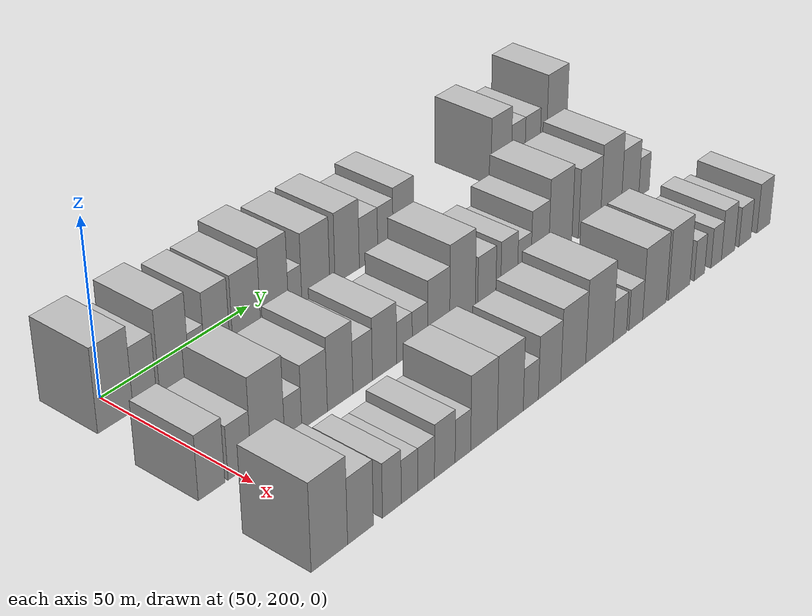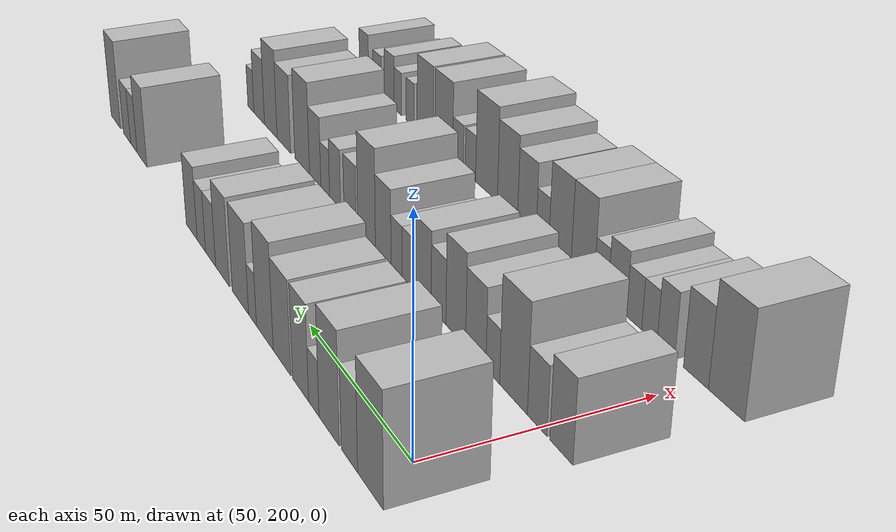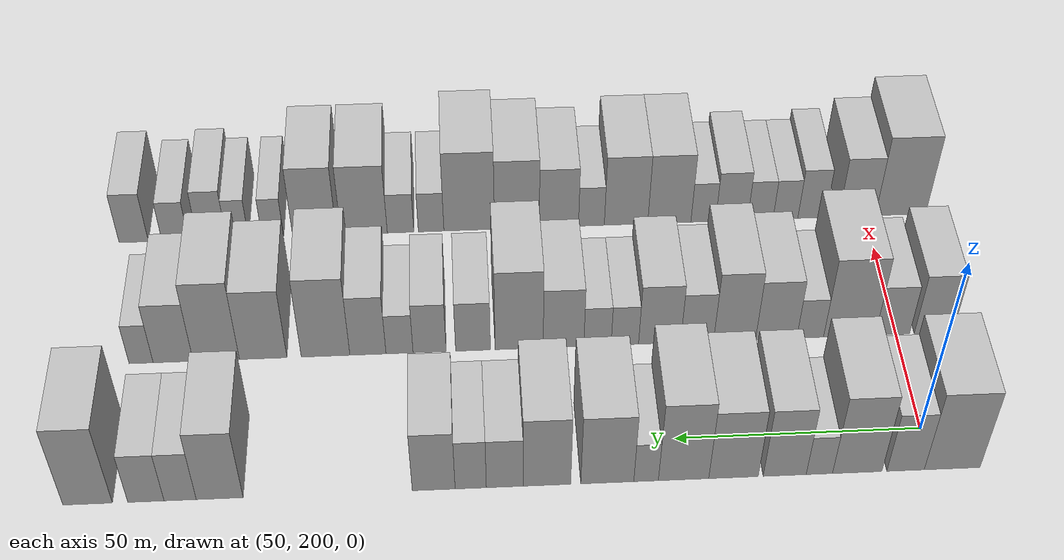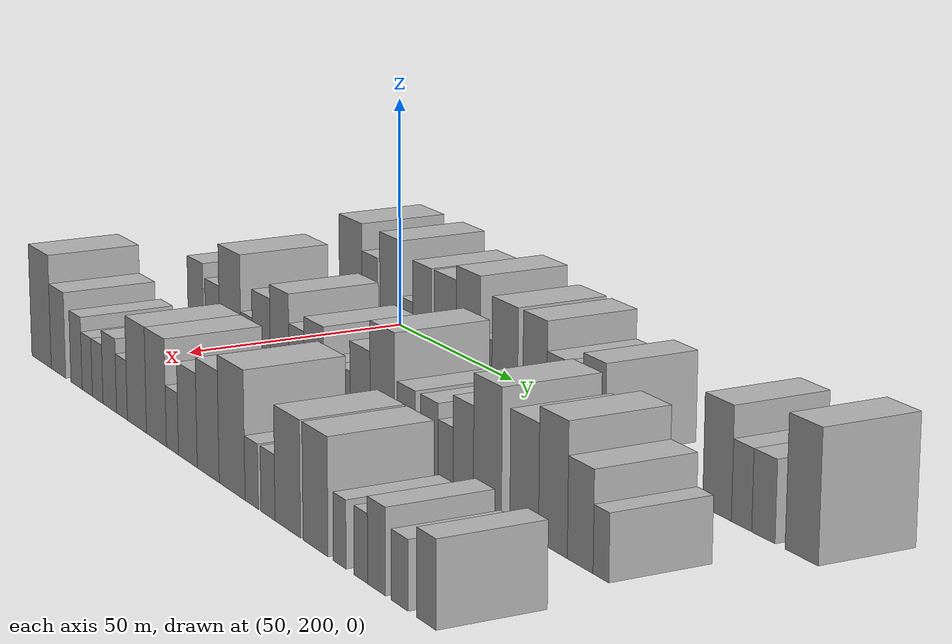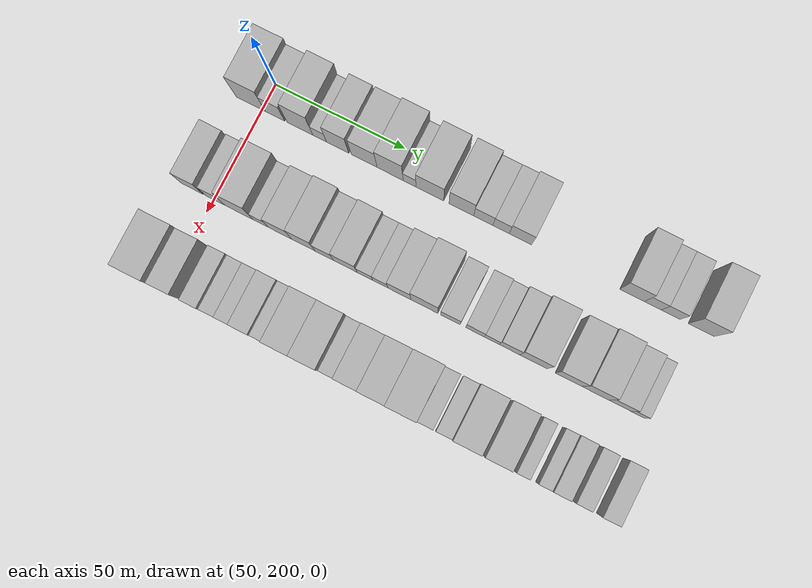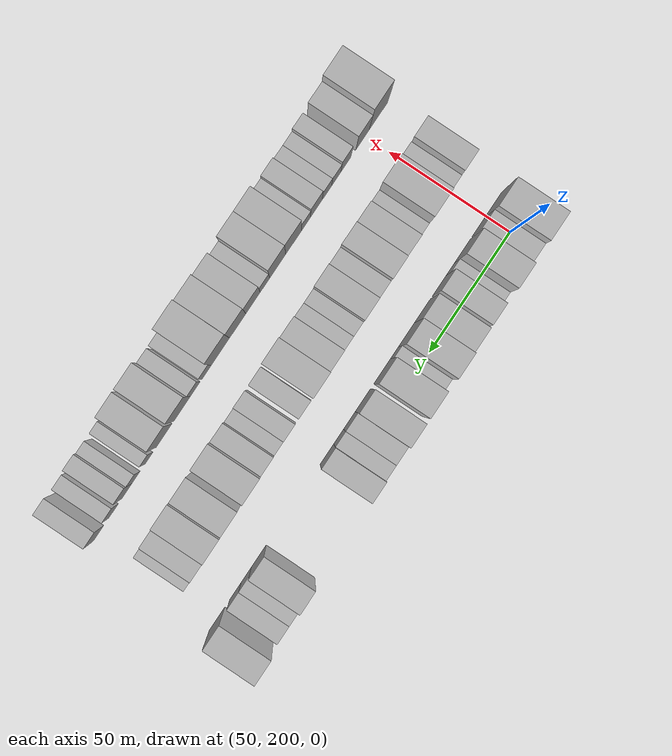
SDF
<sdf version="1.6">
 <world name="default">
  <model name="building_60">
   <static>1</static>
   <pose>50.0000 195.7242 0 0.000000 0.000000 0.000000</pose>
   <link name="link">
    <pose>0 0 12.00 0 0 0</pose>
    <collision name="collision"><geometry><box><size>20.0000 11.2023 24.0000</size></box></geometry></collision>
    <visual name="visual">
     <cast_shadows>0</cast_shadows>
     <geometry><box><size>20.0000 11.2023 24.0000</size></box></geometry>
     <material>
      <script>
       <uri>model://HANNAS_wall/materials/scripts</uri>
       <uri>model://HANNAS_wall/materials/textures</uri>
       <name>vrc/HANNAS_wall</name>
      </script>
     </material>
    </visual>
   </link>
  </model>
  <model name="building_61">
   <static>1</static>
   <pose>50.0000 205.0760 0 0.000000 0.000000 0.000000</pose>
   <link name="link">
    <pose>0 0 9.00 0 0 0</pose>
    <collision name="collision"><geometry><box><size>20.0000 7.5013 18.0000</size></box></geometry></collision>
    <visual name="visual">
     <cast_shadows>0</cast_shadows>
     <geometry><box><size>20.0000 7.5013 18.0000</size></box></geometry>
     <material>
      <script>
       <uri>model://HANNAS_wall/materials/scripts</uri>
       <uri>model://HANNAS_wall/materials/textures</uri>
       <name>vrc/HANNAS_wall</name>
      </script>
     </material>
    </visual>
   </link>
  </model>
  <model name="building_62">
   <static>1</static>
   <pose>50.0000 214.7667 0 0.000000 0.000000 0.000000</pose>
   <link name="link">
    <pose>0 0 12.00 0 0 0</pose>
    <collision name="collision"><geometry><box><size>20.0000 9.8800 24.0000</size></box></geometry></collision>
    <visual name="visual">
     <cast_shadows>0</cast_shadows>
     <geometry><box><size>20.0000 9.8800 24.0000</size></box></geometry>
     <material>
      <script>
       <uri>model://HANNAS_wall/materials/scripts</uri>
       <uri>model://HANNAS_wall/materials/textures</uri>
       <name>vrc/HANNAS_wall</name>
      </script>
     </material>
    </visual>
   </link>
  </model>
  <model name="building_63">
   <static>1</static>
   <pose>50.0000 222.3314 0 0.000000 0.000000 0.000000</pose>
   <link name="link">
    <pose>0 0 6.00 0 0 0</pose>
    <collision name="collision"><geometry><box><size>20.0000 5.2495 12.0000</size></box></geometry></collision>
    <visual name="visual">
     <cast_shadows>0</cast_shadows>
     <geometry><box><size>20.0000 5.2495 12.0000</size></box></geometry>
     <material>
      <script>
       <uri>model://HANNAS_wall/materials/scripts</uri>
       <uri>model://HANNAS_wall/materials/textures</uri>
       <name>vrc/HANNAS_wall</name>
      </script>
     </material>
    </visual>
   </link>
  </model>
  <model name="building_64">
   <static>1</static>
   <pose>50.0000 229.2454 0 0.000000 0.000000 0.000000</pose>
   <link name="link">
    <pose>0 0 10.50 0 0 0</pose>
    <collision name="collision"><geometry><box><size>20.0000 8.5784 21.0000</size></box></geometry></collision>
    <visual name="visual">
     <cast_shadows>0</cast_shadows>
     <geometry><box><size>20.0000 8.5784 21.0000</size></box></geometry>
     <material>
      <script>
       <uri>model://HANNAS_wall/materials/scripts</uri>
       <uri>model://HANNAS_wall/materials/textures</uri>
       <name>vrc/HANNAS_wall</name>
      </script>
     </material>
    </visual>
   </link>
  </model>
  <model name="building_65">
   <static>1</static>
   <pose>50.0000 239.4537 0 0.000000 0.000000 0.000000</pose>
   <link name="link">
    <pose>0 0 10.50 0 0 0</pose>
    <collision name="collision"><geometry><box><size>20.0000 9.8383 21.0000</size></box></geometry></collision>
    <visual name="visual">
     <cast_shadows>0</cast_shadows>
     <geometry><box><size>20.0000 9.8383 21.0000</size></box></geometry>
     <material>
      <script>
       <uri>model://HANNAS_wall/materials/scripts</uri>
       <uri>model://HANNAS_wall/materials/textures</uri>
       <name>vrc/HANNAS_wall</name>
      </script>
     </material>
    </visual>
   </link>
  </model>
  <model name="building_66">
   <static>1</static>
   <pose>50.0000 249.3838 0 0.000000 0.000000 0.000000</pose>
   <link name="link">
    <pose>0 0 12.00 0 0 0</pose>
    <collision name="collision"><geometry><box><size>20.0000 10.0220 24.0000</size></box></geometry></collision>
    <visual name="visual">
     <cast_shadows>0</cast_shadows>
     <geometry><box><size>20.0000 10.0220 24.0000</size></box></geometry>
     <material>
      <script>
       <uri>model://HANNAS_wall/materials/scripts</uri>
       <uri>model://HANNAS_wall/materials/textures</uri>
       <name>vrc/HANNAS_wall</name>
      </script>
     </material>
    </visual>
   </link>
  </model>
  <model name="building_67">
   <static>1</static>
   <pose>50.0000 256.8304 0 0.000000 0.000000 0.000000</pose>
   <link name="link">
    <pose>0 0 6.00 0 0 0</pose>
    <collision name="collision"><geometry><box><size>20.0000 4.8712 12.0000</size></box></geometry></collision>
    <visual name="visual">
     <cast_shadows>0</cast_shadows>
     <geometry><box><size>20.0000 4.8712 12.0000</size></box></geometry>
     <material>
      <script>
       <uri>model://HANNAS_wall/materials/scripts</uri>
       <uri>model://HANNAS_wall/materials/textures</uri>
       <name>vrc/HANNAS_wall</name>
      </script>
     </material>
    </visual>
   </link>
  </model>
  <model name="building_68">
   <static>1</static>
   <pose>50.0000 264.5145 0 0.000000 0.000000 0.000000</pose>
   <link name="link">
    <pose>0 0 10.50 0 0 0</pose>
    <collision name="collision"><geometry><box><size>20.0000 10.4969 21.0000</size></box></geometry></collision>
    <visual name="visual">
     <cast_shadows>0</cast_shadows>
     <geometry><box><size>20.0000 10.4969 21.0000</size></box></geometry>
     <material>
      <script>
       <uri>model://HANNAS_wall/materials/scripts</uri>
       <uri>model://HANNAS_wall/materials/textures</uri>
       <name>vrc/HANNAS_wall</name>
      </script>
     </material>
    </visual>
   </link>
  </model>
  <model name="building_69">
   <static>1</static>
   <pose>50.0000 276.4548 0 0.000000 0.000000 0.000000</pose>
   <link name="link">
    <pose>0 0 10.50 0 0 0</pose>
    <collision name="collision"><geometry><box><size>20.0000 9.3837 21.0000</size></box></geometry></collision>
    <visual name="visual">
     <cast_shadows>0</cast_shadows>
     <geometry><box><size>20.0000 9.3837 21.0000</size></box></geometry>
     <material>
      <script>
       <uri>model://HANNAS_wall/materials/scripts</uri>
       <uri>model://HANNAS_wall/materials/textures</uri>
       <name>vrc/HANNAS_wall</name>
      </script>
     </material>
    </visual>
   </link>
  </model>
  <model name="building_70">
   <static>1</static>
   <pose>50.0000 284.7832 0 0.000000 0.000000 0.000000</pose>
   <link name="link">
    <pose>0 0 7.50 0 0 0</pose>
    <collision name="collision"><geometry><box><size>20.0000 7.2729 15.0000</size></box></geometry></collision>
    <visual name="visual">
     <cast_shadows>0</cast_shadows>
     <geometry><box><size>20.0000 7.2729 15.0000</size></box></geometry>
     <material>
      <script>
       <uri>model://HANNAS_wall/materials/scripts</uri>
       <uri>model://HANNAS_wall/materials/textures</uri>
       <name>vrc/HANNAS_wall</name>
      </script>
     </material>
    </visual>
   </link>
  </model>
  <model name="building_71">
   <static>1</static>
   <pose>50.0000 291.4937 0 0.000000 0.000000 0.000000</pose>
   <link name="link">
    <pose>0 0 7.50 0 0 0</pose>
    <collision name="collision"><geometry><box><size>20.0000 6.1482 15.0000</size></box></geometry></collision>
    <visual name="visual">
     <cast_shadows>0</cast_shadows>
     <geometry><box><size>20.0000 6.1482 15.0000</size></box></geometry>
     <material>
      <script>
       <uri>model://HANNAS_wall/materials/scripts</uri>
       <uri>model://HANNAS_wall/materials/textures</uri>
       <name>vrc/HANNAS_wall</name>
      </script>
     </material>
    </visual>
   </link>
  </model>
  <model name="building_72">
   <static>1</static>
   <pose>50.0000 298.7788 0 0.000000 0.000000 0.000000</pose>
   <link name="link">
    <pose>0 0 9.00 0 0 0</pose>
    <collision name="collision"><geometry><box><size>20.0000 8.4220 18.0000</size></box></geometry></collision>
    <visual name="visual">
     <cast_shadows>0</cast_shadows>
     <geometry><box><size>20.0000 8.4220 18.0000</size></box></geometry>
     <material>
      <script>
       <uri>model://HANNAS_wall/materials/scripts</uri>
       <uri>model://HANNAS_wall/materials/textures</uri>
       <name>vrc/HANNAS_wall</name>
      </script>
     </material>
    </visual>
   </link>
  </model>
  <model name="building_73">
   <static>1</static>
   <pose>50.0000 340.7081 0 0.000000 0.000000 0.000000</pose>
   <link name="link">
    <pose>0 0 10.50 0 0 0</pose>
    <collision name="collision"><geometry><box><size>20.0000 9.1456 21.0000</size></box></geometry></collision>
    <visual name="visual">
     <cast_shadows>0</cast_shadows>
     <geometry><box><size>20.0000 9.1456 21.0000</size></box></geometry>
     <material>
      <script>
       <uri>model://HANNAS_wall/materials/scripts</uri>
       <uri>model://HANNAS_wall/materials/textures</uri>
       <name>vrc/HANNAS_wall</name>
      </script>
     </material>
    </visual>
   </link>
  </model>
  <model name="building_74">
   <static>1</static>
   <pose>50.0000 348.4140 0 0.000000 0.000000 0.000000</pose>
   <link name="link">
    <pose>0 0 7.50 0 0 0</pose>
    <collision name="collision"><geometry><box><size>20.0000 6.2661 15.0000</size></box></geometry></collision>
    <visual name="visual">
     <cast_shadows>0</cast_shadows>
     <geometry><box><size>20.0000 6.2661 15.0000</size></box></geometry>
     <material>
      <script>
       <uri>model://HANNAS_wall/materials/scripts</uri>
       <uri>model://HANNAS_wall/materials/textures</uri>
       <name>vrc/HANNAS_wall</name>
      </script>
     </material>
    </visual>
   </link>
  </model>
  <model name="building_75">
   <static>1</static>
   <pose>50.0000 355.0725 0 0.000000 0.000000 0.000000</pose>
   <link name="link">
    <pose>0 0 7.50 0 0 0</pose>
    <collision name="collision"><geometry><box><size>20.0000 7.0509 15.0000</size></box></geometry></collision>
    <visual name="visual">
     <cast_shadows>0</cast_shadows>
     <geometry><box><size>20.0000 7.0509 15.0000</size></box></geometry>
     <material>
      <script>
       <uri>model://HANNAS_wall/materials/scripts</uri>
       <uri>model://HANNAS_wall/materials/textures</uri>
       <name>vrc/HANNAS_wall</name>
      </script>
     </material>
    </visual>
   </link>
  </model>
  <model name="building_76">
   <static>1</static>
   <pose>50.0000 366.4032 0 0.000000 0.000000 0.000000</pose>
   <link name="link">
    <pose>0 0 12.00 0 0 0</pose>
    <collision name="collision"><geometry><box><size>20.0000 9.6106 24.0000</size></box></geometry></collision>
    <visual name="visual">
     <cast_shadows>0</cast_shadows>
     <geometry><box><size>20.0000 9.6106 24.0000</size></box></geometry>
     <material>
      <script>
       <uri>model://HANNAS_wall/materials/scripts</uri>
       <uri>model://HANNAS_wall/materials/textures</uri>
       <name>vrc/HANNAS_wall</name>
      </script>
     </material>
    </visual>
   </link>
  </model>
  <model name="building_138">
   <static>1</static>
   <pose>85.0000 191.9416 0 0.000000 0.000000 0.000000</pose>
   <link name="link">
    <pose>0 0 9.00 0 0 0</pose>
    <collision name="collision"><geometry><box><size>20.0000 8.3082 18.0000</size></box></geometry></collision>
    <visual name="visual">
     <cast_shadows>0</cast_shadows>
     <geometry><box><size>20.0000 8.3082 18.0000</size></box></geometry>
     <material>
      <script>
       <uri>model://HANNAS_wall/materials/scripts</uri>
       <uri>model://HANNAS_wall/materials/textures</uri>
       <name>vrc/HANNAS_wall</name>
      </script>
     </material>
    </visual>
   </link>
  </model>
  <model name="building_139">
   <static>1</static>
   <pose>85.0000 200.7867 0 0.000000 0.000000 0.000000</pose>
   <link name="link">
    <pose>0 0 7.50 0 0 0</pose>
    <collision name="collision"><geometry><box><size>20.0000 7.3820 15.0000</size></box></geometry></collision>
    <visual name="visual">
     <cast_shadows>0</cast_shadows>
     <geometry><box><size>20.0000 7.3820 15.0000</size></box></geometry>
     <material>
      <script>
       <uri>model://HANNAS_wall/materials/scripts</uri>
       <uri>model://HANNAS_wall/materials/textures</uri>
       <name>vrc/HANNAS_wall</name>
      </script>
     </material>
    </visual>
   </link>
  </model>
  <model name="building_140">
   <static>1</static>
   <pose>85.0000 210.0080 0 0.000000 0.000000 0.000000</pose>
   <link name="link">
    <pose>0 0 12.00 0 0 0</pose>
    <collision name="collision"><geometry><box><size>20.0000 11.0606 24.0000</size></box></geometry></collision>
    <visual name="visual">
     <cast_shadows>0</cast_shadows>
     <geometry><box><size>20.0000 11.0606 24.0000</size></box></geometry>
     <material>
      <script>
       <uri>model://HANNAS_wall/materials/scripts</uri>
       <uri>model://HANNAS_wall/materials/textures</uri>
       <name>vrc/HANNAS_wall</name>
      </script>
     </material>
    </visual>
   </link>
  </model>
  <model name="building_141">
   <static>1</static>
   <pose>85.0000 218.4133 0 0.000000 0.000000 0.000000</pose>
   <link name="link">
    <pose>0 0 6.00 0 0 0</pose>
    <collision name="collision"><geometry><box><size>20.0000 5.7501 12.0000</size></box></geometry></collision>
    <visual name="visual">
     <cast_shadows>0</cast_shadows>
     <geometry><box><size>20.0000 5.7501 12.0000</size></box></geometry>
     <material>
      <script>
       <uri>model://HANNAS_wall/materials/scripts</uri>
       <uri>model://HANNAS_wall/materials/textures</uri>
       <name>vrc/HANNAS_wall</name>
      </script>
     </material>
    </visual>
   </link>
  </model>
  <model name="building_142">
   <static>1</static>
   <pose>85.0000 225.6847 0 0.000000 0.000000 0.000000</pose>
   <link name="link">
    <pose>0 0 9.00 0 0 0</pose>
    <collision name="collision"><geometry><box><size>20.0000 8.7927 18.0000</size></box></geometry></collision>
    <visual name="visual">
     <cast_shadows>0</cast_shadows>
     <geometry><box><size>20.0000 8.7927 18.0000</size></box></geometry>
     <material>
      <script>
       <uri>model://HANNAS_wall/materials/scripts</uri>
       <uri>model://HANNAS_wall/materials/textures</uri>
       <name>vrc/HANNAS_wall</name>
      </script>
     </material>
    </visual>
   </link>
  </model>
  <model name="building_143">
   <static>1</static>
   <pose>85.0000 234.5611 0 0.000000 0.000000 0.000000</pose>
   <link name="link">
    <pose>0 0 10.50 0 0 0</pose>
    <collision name="collision"><geometry><box><size>20.0000 8.9601 21.0000</size></box></geometry></collision>
    <visual name="visual">
     <cast_shadows>0</cast_shadows>
     <geometry><box><size>20.0000 8.9601 21.0000</size></box></geometry>
     <material>
      <script>
       <uri>model://HANNAS_wall/materials/scripts</uri>
       <uri>model://HANNAS_wall/materials/textures</uri>
       <name>vrc/HANNAS_wall</name>
      </script>
     </material>
    </visual>
   </link>
  </model>
  <model name="building_144">
   <static>1</static>
   <pose>85.0000 242.5487 0 0.000000 0.000000 0.000000</pose>
   <link name="link">
    <pose>0 0 7.50 0 0 0</pose>
    <collision name="collision"><geometry><box><size>20.0000 7.0150 15.0000</size></box></geometry></collision>
    <visual name="visual">
     <cast_shadows>0</cast_shadows>
     <geometry><box><size>20.0000 7.0150 15.0000</size></box></geometry>
     <material>
      <script>
       <uri>model://HANNAS_wall/materials/scripts</uri>
       <uri>model://HANNAS_wall/materials/textures</uri>
       <name>vrc/HANNAS_wall</name>
      </script>
     </material>
    </visual>
   </link>
  </model>
  <model name="building_145">
   <static>1</static>
   <pose>85.0000 250.5208 0 0.000000 0.000000 0.000000</pose>
   <link name="link">
    <pose>0 0 9.00 0 0 0</pose>
    <collision name="collision"><geometry><box><size>20.0000 8.9292 18.0000</size></box></geometry></collision>
    <visual name="visual">
     <cast_shadows>0</cast_shadows>
     <geometry><box><size>20.0000 8.9292 18.0000</size></box></geometry>
     <material>
      <script>
       <uri>model://HANNAS_wall/materials/scripts</uri>
       <uri>model://HANNAS_wall/materials/textures</uri>
       <name>vrc/HANNAS_wall</name>
      </script>
     </material>
    </visual>
   </link>
  </model>
  <model name="building_146">
   <static>1</static>
   <pose>85.0000 257.8987 0 0.000000 0.000000 0.000000</pose>
   <link name="link">
    <pose>0 0 6.00 0 0 0</pose>
    <collision name="collision"><geometry><box><size>20.0000 5.8268 12.0000</size></box></geometry></collision>
    <visual name="visual">
     <cast_shadows>0</cast_shadows>
     <geometry><box><size>20.0000 5.8268 12.0000</size></box></geometry>
     <material>
      <script>
       <uri>model://HANNAS_wall/materials/scripts</uri>
       <uri>model://HANNAS_wall/materials/textures</uri>
       <name>vrc/HANNAS_wall</name>
      </script>
     </material>
    </visual>
   </link>
  </model>
  <model name="building_147">
   <static>1</static>
   <pose>85.0000 263.7088 0 0.000000 0.000000 0.000000</pose>
   <link name="link">
    <pose>0 0 6.00 0 0 0</pose>
    <collision name="collision"><geometry><box><size>20.0000 5.7935 12.0000</size></box></geometry></collision>
    <visual name="visual">
     <cast_shadows>0</cast_shadows>
     <geometry><box><size>20.0000 5.7935 12.0000</size></box></geometry>
     <material>
      <script>
       <uri>model://HANNAS_wall/materials/scripts</uri>
       <uri>model://HANNAS_wall/materials/textures</uri>
       <name>vrc/HANNAS_wall</name>
      </script>
     </material>
    </visual>
   </link>
  </model>
  <model name="building_148">
   <static>1</static>
   <pose>85.0000 270.9054 0 0.000000 0.000000 0.000000</pose>
   <link name="link">
    <pose>0 0 9.00 0 0 0</pose>
    <collision name="collision"><geometry><box><size>20.0000 8.5997 18.0000</size></box></geometry></collision>
    <visual name="visual">
     <cast_shadows>0</cast_shadows>
     <geometry><box><size>20.0000 8.5997 18.0000</size></box></geometry>
     <material>
      <script>
       <uri>model://HANNAS_wall/materials/scripts</uri>
       <uri>model://HANNAS_wall/materials/textures</uri>
       <name>vrc/HANNAS_wall</name>
      </script>
     </material>
    </visual>
   </link>
  </model>
  <model name="building_149">
   <static>1</static>
   <pose>85.0000 280.2719 0 0.000000 0.000000 0.000000</pose>
   <link name="link">
    <pose>0 0 12.00 0 0 0</pose>
    <collision name="collision"><geometry><box><size>20.0000 10.1333 24.0000</size></box></geometry></collision>
    <visual name="visual">
     <cast_shadows>0</cast_shadows>
     <geometry><box><size>20.0000 10.1333 24.0000</size></box></geometry>
     <material>
      <script>
       <uri>model://HANNAS_wall/materials/scripts</uri>
       <uri>model://HANNAS_wall/materials/textures</uri>
       <name>vrc/HANNAS_wall</name>
      </script>
     </material>
    </visual>
   </link>
  </model>
  <model name="building_150">
   <static>1</static>
   <pose>85.0000 290.0118 0 0.000000 0.000000 0.000000</pose>
   <link name="link">
    <pose>0 0 7.50 0 0 0</pose>
    <collision name="collision"><geometry><box><size>20.0000 7.3466 15.0000</size></box></geometry></collision>
    <visual name="visual">
     <cast_shadows>0</cast_shadows>
     <geometry><box><size>20.0000 7.3466 15.0000</size></box></geometry>
     <material>
      <script>
       <uri>model://HANNAS_wall/materials/scripts</uri>
       <uri>model://HANNAS_wall/materials/textures</uri>
       <name>vrc/HANNAS_wall</name>
      </script>
     </material>
    </visual>
   </link>
  </model>
  <model name="building_151">
   <static>1</static>
   <pose>85.0000 299.1734 0 0.000000 0.000000 0.000000</pose>
   <link name="link">
    <pose>0 0 7.50 0 0 0</pose>
    <collision name="collision"><geometry><box><size>20.0000 6.9765 15.0000</size></box></geometry></collision>
    <visual name="visual">
     <cast_shadows>0</cast_shadows>
     <geometry><box><size>20.0000 6.9765 15.0000</size></box></geometry>
     <material>
      <script>
       <uri>model://HANNAS_wall/materials/scripts</uri>
       <uri>model://HANNAS_wall/materials/textures</uri>
       <name>vrc/HANNAS_wall</name>
      </script>
     </material>
    </visual>
   </link>
  </model>
  <model name="building_152">
   <static>1</static>
   <pose>85.0000 305.5049 0 0.000000 0.000000 0.000000</pose>
   <link name="link">
    <pose>0 0 6.00 0 0 0</pose>
    <collision name="collision"><geometry><box><size>20.0000 5.6864 12.0000</size></box></geometry></collision>
    <visual name="visual">
     <cast_shadows>0</cast_shadows>
     <geometry><box><size>20.0000 5.6864 12.0000</size></box></geometry>
     <material>
      <script>
       <uri>model://HANNAS_wall/materials/scripts</uri>
       <uri>model://HANNAS_wall/materials/textures</uri>
       <name>vrc/HANNAS_wall</name>
      </script>
     </material>
    </visual>
   </link>
  </model>
  <model name="building_153">
   <static>1</static>
   <pose>85.0000 312.1440 0 0.000000 0.000000 0.000000</pose>
   <link name="link">
    <pose>0 0 9.00 0 0 0</pose>
    <collision name="collision"><geometry><box><size>20.0000 7.5918 18.0000</size></box></geometry></collision>
    <visual name="visual">
     <cast_shadows>0</cast_shadows>
     <geometry><box><size>20.0000 7.5918 18.0000</size></box></geometry>
     <material>
      <script>
       <uri>model://HANNAS_wall/materials/scripts</uri>
       <uri>model://HANNAS_wall/materials/textures</uri>
       <name>vrc/HANNAS_wall</name>
      </script>
     </material>
    </visual>
   </link>
  </model>
  <model name="building_154">
   <static>1</static>
   <pose>85.0000 321.0387 0 0.000000 0.000000 0.000000</pose>
   <link name="link">
    <pose>0 0 12.00 0 0 0</pose>
    <collision name="collision"><geometry><box><size>20.0000 10.1975 24.0000</size></box></geometry></collision>
    <visual name="visual">
     <cast_shadows>0</cast_shadows>
     <geometry><box><size>20.0000 10.1975 24.0000</size></box></geometry>
     <material>
      <script>
       <uri>model://HANNAS_wall/materials/scripts</uri>
       <uri>model://HANNAS_wall/materials/textures</uri>
       <name>vrc/HANNAS_wall</name>
      </script>
     </material>
    </visual>
   </link>
  </model>
  <model name="building_155">
   <static>1</static>
   <pose>85.0000 334.1100 0 0.000000 0.000000 0.000000</pose>
   <link name="link">
    <pose>0 0 10.50 0 0 0</pose>
    <collision name="collision"><geometry><box><size>20.0000 9.9452 21.0000</size></box></geometry></collision>
    <visual name="visual">
     <cast_shadows>0</cast_shadows>
     <geometry><box><size>20.0000 9.9452 21.0000</size></box></geometry>
     <material>
      <script>
       <uri>model://HANNAS_wall/materials/scripts</uri>
       <uri>model://HANNAS_wall/materials/textures</uri>
       <name>vrc/HANNAS_wall</name>
      </script>
     </material>
    </visual>
   </link>
  </model>
  <model name="building_156">
   <static>1</static>
   <pose>85.0000 343.9161 0 0.000000 0.000000 0.000000</pose>
   <link name="link">
    <pose>0 0 12.00 0 0 0</pose>
    <collision name="collision"><geometry><box><size>20.0000 9.6670 24.0000</size></box></geometry></collision>
    <visual name="visual">
     <cast_shadows>0</cast_shadows>
     <geometry><box><size>20.0000 9.6670 24.0000</size></box></geometry>
     <material>
      <script>
       <uri>model://HANNAS_wall/materials/scripts</uri>
       <uri>model://HANNAS_wall/materials/textures</uri>
       <name>vrc/HANNAS_wall</name>
      </script>
     </material>
    </visual>
   </link>
  </model>
  <model name="building_157">
   <static>1</static>
   <pose>85.0000 352.9273 0 0.000000 0.000000 0.000000</pose>
   <link name="link">
    <pose>0 0 9.00 0 0 0</pose>
    <collision name="collision"><geometry><box><size>20.0000 8.3553 18.0000</size></box></geometry></collision>
    <visual name="visual">
     <cast_shadows>0</cast_shadows>
     <geometry><box><size>20.0000 8.3553 18.0000</size></box></geometry>
     <material>
      <script>
       <uri>model://HANNAS_wall/materials/scripts</uri>
       <uri>model://HANNAS_wall/materials/textures</uri>
       <name>vrc/HANNAS_wall</name>
      </script>
     </material>
    </visual>
   </link>
  </model>
  <model name="building_158">
   <static>1</static>
   <pose>85.0000 359.6115 0 0.000000 0.000000 0.000000</pose>
   <link name="link">
    <pose>0 0 6.00 0 0 0</pose>
    <collision name="collision"><geometry><box><size>20.0000 5.0130 12.0000</size></box></geometry></collision>
    <visual name="visual">
     <cast_shadows>0</cast_shadows>
     <geometry><box><size>20.0000 5.0130 12.0000</size></box></geometry>
     <material>
      <script>
       <uri>model://HANNAS_wall/materials/scripts</uri>
       <uri>model://HANNAS_wall/materials/textures</uri>
       <name>vrc/HANNAS_wall</name>
      </script>
     </material>
    </visual>
   </link>
  </model>
  <model name="building_220">
   <static>1</static>
   <pose>120.0000 191.9872 0 0.000000 0.000000 0.000000</pose>
   <link name="link">
    <pose>0 0 12.00 0 0 0</pose>
    <collision name="collision"><geometry><box><size>20.0000 11.5384 24.0000</size></box></geometry></collision>
    <visual name="visual">
     <cast_shadows>0</cast_shadows>
     <geometry><box><size>20.0000 11.5384 24.0000</size></box></geometry>
     <material>
      <script>
       <uri>model://HANNAS_wall/materials/scripts</uri>
       <uri>model://HANNAS_wall/materials/textures</uri>
       <name>vrc/HANNAS_wall</name>
      </script>
     </material>
    </visual>
   </link>
  </model>
  <model name="building_221">
   <static>1</static>
   <pose>120.0000 201.9499 0 0.000000 0.000000 0.000000</pose>
   <link name="link">
    <pose>0 0 9.00 0 0 0</pose>
    <collision name="collision"><geometry><box><size>20.0000 8.3870 18.0000</size></box></geometry></collision>
    <visual name="visual">
     <cast_shadows>0</cast_shadows>
     <geometry><box><size>20.0000 8.3870 18.0000</size></box></geometry>
     <material>
      <script>
       <uri>model://HANNAS_wall/materials/scripts</uri>
       <uri>model://HANNAS_wall/materials/textures</uri>
       <name>vrc/HANNAS_wall</name>
      </script>
     </material>
    </visual>
   </link>
  </model>
  <model name="building_222">
   <static>1</static>
   <pose>120.0000 212.3005 0 0.000000 0.000000 0.000000</pose>
   <link name="link">
    <pose>0 0 7.50 0 0 0</pose>
    <collision name="collision"><geometry><box><size>20.0000 6.3141 15.0000</size></box></geometry></collision>
    <visual name="visual">
     <cast_shadows>0</cast_shadows>
     <geometry><box><size>20.0000 6.3141 15.0000</size></box></geometry>
     <material>
      <script>
       <uri>model://HANNAS_wall/materials/scripts</uri>
       <uri>model://HANNAS_wall/materials/textures</uri>
       <name>vrc/HANNAS_wall</name>
      </script>
     </material>
    </visual>
   </link>
  </model>
  <model name="building_223">
   <static>1</static>
   <pose>120.0000 218.2814 0 0.000000 0.000000 0.000000</pose>
   <link name="link">
    <pose>0 0 6.00 0 0 0</pose>
    <collision name="collision"><geometry><box><size>20.0000 5.6477 12.0000</size></box></geometry></collision>
    <visual name="visual">
     <cast_shadows>0</cast_shadows>
     <geometry><box><size>20.0000 5.6477 12.0000</size></box></geometry>
     <material>
      <script>
       <uri>model://HANNAS_wall/materials/scripts</uri>
       <uri>model://HANNAS_wall/materials/textures</uri>
       <name>vrc/HANNAS_wall</name>
      </script>
     </material>
    </visual>
   </link>
  </model>
  <model name="building_224">
   <static>1</static>
   <pose>120.0000 224.0048 0 0.000000 0.000000 0.000000</pose>
   <link name="link">
    <pose>0 0 6.00 0 0 0</pose>
    <collision name="collision"><geometry><box><size>20.0000 5.7991 12.0000</size></box></geometry></collision>
    <visual name="visual">
     <cast_shadows>0</cast_shadows>
     <geometry><box><size>20.0000 5.7991 12.0000</size></box></geometry>
     <material>
      <script>
       <uri>model://HANNAS_wall/materials/scripts</uri>
       <uri>model://HANNAS_wall/materials/textures</uri>
       <name>vrc/HANNAS_wall</name>
      </script>
     </material>
    </visual>
   </link>
  </model>
  <model name="building_225">
   <static>1</static>
   <pose>120.0000 230.5446 0 0.000000 0.000000 0.000000</pose>
   <link name="link">
    <pose>0 0 7.50 0 0 0</pose>
    <collision name="collision"><geometry><box><size>20.0000 7.2805 15.0000</size></box></geometry></collision>
    <visual name="visual">
     <cast_shadows>0</cast_shadows>
     <geometry><box><size>20.0000 7.2805 15.0000</size></box></geometry>
     <material>
      <script>
       <uri>model://HANNAS_wall/materials/scripts</uri>
       <uri>model://HANNAS_wall/materials/textures</uri>
       <name>vrc/HANNAS_wall</name>
      </script>
     </material>
    </visual>
   </link>
  </model>
  <model name="building_226">
   <static>1</static>
   <pose>120.0000 236.9828 0 0.000000 0.000000 0.000000</pose>
   <link name="link">
    <pose>0 0 6.00 0 0 0</pose>
    <collision name="collision"><geometry><box><size>20.0000 5.5960 12.0000</size></box></geometry></collision>
    <visual name="visual">
     <cast_shadows>0</cast_shadows>
     <geometry><box><size>20.0000 5.5960 12.0000</size></box></geometry>
     <material>
      <script>
       <uri>model://HANNAS_wall/materials/scripts</uri>
       <uri>model://HANNAS_wall/materials/textures</uri>
       <name>vrc/HANNAS_wall</name>
      </script>
     </material>
    </visual>
   </link>
  </model>
  <model name="building_227">
   <static>1</static>
   <pose>120.0000 244.6711 0 0.000000 0.000000 0.000000</pose>
   <link name="link">
    <pose>0 0 10.50 0 0 0</pose>
    <collision name="collision"><geometry><box><size>20.0000 9.7805 21.0000</size></box></geometry></collision>
    <visual name="visual">
     <cast_shadows>0</cast_shadows>
     <geometry><box><size>20.0000 9.7805 21.0000</size></box></geometry>
     <material>
      <script>
       <uri>model://HANNAS_wall/materials/scripts</uri>
       <uri>model://HANNAS_wall/materials/textures</uri>
       <name>vrc/HANNAS_wall</name>
      </script>
     </material>
    </visual>
   </link>
  </model>
  <model name="building_228">
   <static>1</static>
   <pose>120.0000 254.4765 0 0.000000 0.000000 0.000000</pose>
   <link name="link">
    <pose>0 0 10.50 0 0 0</pose>
    <collision name="collision"><geometry><box><size>20.0000 9.8302 21.0000</size></box></geometry></collision>
    <visual name="visual">
     <cast_shadows>0</cast_shadows>
     <geometry><box><size>20.0000 9.8302 21.0000</size></box></geometry>
     <material>
      <script>
       <uri>model://HANNAS_wall/materials/scripts</uri>
       <uri>model://HANNAS_wall/materials/textures</uri>
       <name>vrc/HANNAS_wall</name>
      </script>
     </material>
    </visual>
   </link>
  </model>
  <model name="building_229">
   <static>1</static>
   <pose>120.0000 262.3106 0 0.000000 0.000000 0.000000</pose>
   <link name="link">
    <pose>0 0 6.00 0 0 0</pose>
    <collision name="collision"><geometry><box><size>20.0000 5.8380 12.0000</size></box></geometry></collision>
    <visual name="visual">
     <cast_shadows>0</cast_shadows>
     <geometry><box><size>20.0000 5.8380 12.0000</size></box></geometry>
     <material>
      <script>
       <uri>model://HANNAS_wall/materials/scripts</uri>
       <uri>model://HANNAS_wall/materials/textures</uri>
       <name>vrc/HANNAS_wall</name>
      </script>
     </material>
    </visual>
   </link>
  </model>
  <model name="building_230">
   <static>1</static>
   <pose>120.0000 269.6522 0 0.000000 0.000000 0.000000</pose>
   <link name="link">
    <pose>0 0 9.00 0 0 0</pose>
    <collision name="collision"><geometry><box><size>20.0000 8.8453 18.0000</size></box></geometry></collision>
    <visual name="visual">
     <cast_shadows>0</cast_shadows>
     <geometry><box><size>20.0000 8.8453 18.0000</size></box></geometry>
     <material>
      <script>
       <uri>model://HANNAS_wall/materials/scripts</uri>
       <uri>model://HANNAS_wall/materials/textures</uri>
       <name>vrc/HANNAS_wall</name>
      </script>
     </material>
    </visual>
   </link>
  </model>
  <model name="building_231">
   <static>1</static>
   <pose>120.0000 279.1159 0 0.000000 0.000000 0.000000</pose>
   <link name="link">
    <pose>0 0 10.50 0 0 0</pose>
    <collision name="collision"><geometry><box><size>20.0000 10.0820 21.0000</size></box></geometry></collision>
    <visual name="visual">
     <cast_shadows>0</cast_shadows>
     <geometry><box><size>20.0000 10.0820 21.0000</size></box></geometry>
     <material>
      <script>
       <uri>model://HANNAS_wall/materials/scripts</uri>
       <uri>model://HANNAS_wall/materials/textures</uri>
       <name>vrc/HANNAS_wall</name>
      </script>
     </material>
    </visual>
   </link>
  </model>
  <model name="building_232">
   <static>1</static>
   <pose>120.0000 289.8505 0 0.000000 0.000000 0.000000</pose>
   <link name="link">
    <pose>0 0 12.00 0 0 0</pose>
    <collision name="collision"><geometry><box><size>20.0000 11.3873 24.0000</size></box></geometry></collision>
    <visual name="visual">
     <cast_shadows>0</cast_shadows>
     <geometry><box><size>20.0000 11.3873 24.0000</size></box></geometry>
     <material>
      <script>
       <uri>model://HANNAS_wall/materials/scripts</uri>
       <uri>model://HANNAS_wall/materials/textures</uri>
       <name>vrc/HANNAS_wall</name>
      </script>
     </material>
    </visual>
   </link>
  </model>
  <model name="building_233">
   <static>1</static>
   <pose>120.0000 298.4186 0 0.000000 0.000000 0.000000</pose>
   <link name="link">
    <pose>0 0 6.00 0 0 0</pose>
    <collision name="collision"><geometry><box><size>20.0000 5.7489 12.0000</size></box></geometry></collision>
    <visual name="visual">
     <cast_shadows>0</cast_shadows>
     <geometry><box><size>20.0000 5.7489 12.0000</size></box></geometry>
     <material>
      <script>
       <uri>model://HANNAS_wall/materials/scripts</uri>
       <uri>model://HANNAS_wall/materials/textures</uri>
       <name>vrc/HANNAS_wall</name>
      </script>
     </material>
    </visual>
   </link>
  </model>
  <model name="building_234">
   <static>1</static>
   <pose>120.0000 305.2737 0 0.000000 0.000000 0.000000</pose>
   <link name="link">
    <pose>0 0 6.00 0 0 0</pose>
    <collision name="collision"><geometry><box><size>20.0000 5.9611 12.0000</size></box></geometry></collision>
    <visual name="visual">
     <cast_shadows>0</cast_shadows>
     <geometry><box><size>20.0000 5.9611 12.0000</size></box></geometry>
     <material>
      <script>
       <uri>model://HANNAS_wall/materials/scripts</uri>
       <uri>model://HANNAS_wall/materials/textures</uri>
       <name>vrc/HANNAS_wall</name>
      </script>
     </material>
    </visual>
   </link>
  </model>
  <model name="building_235">
   <static>1</static>
   <pose>120.0000 313.4452 0 0.000000 0.000000 0.000000</pose>
   <link name="link">
    <pose>0 0 10.50 0 0 0</pose>
    <collision name="collision"><geometry><box><size>20.0000 10.3820 21.0000</size></box></geometry></collision>
    <visual name="visual">
     <cast_shadows>0</cast_shadows>
     <geometry><box><size>20.0000 10.3820 21.0000</size></box></geometry>
     <material>
      <script>
       <uri>model://HANNAS_wall/materials/scripts</uri>
       <uri>model://HANNAS_wall/materials/textures</uri>
       <name>vrc/HANNAS_wall</name>
      </script>
     </material>
    </visual>
   </link>
  </model>
  <model name="building_236">
   <static>1</static>
   <pose>120.0000 324.5304 0 0.000000 0.000000 0.000000</pose>
   <link name="link">
    <pose>0 0 10.50 0 0 0</pose>
    <collision name="collision"><geometry><box><size>20.0000 9.7883 21.0000</size></box></geometry></collision>
    <visual name="visual">
     <cast_shadows>0</cast_shadows>
     <geometry><box><size>20.0000 9.7883 21.0000</size></box></geometry>
     <material>
      <script>
       <uri>model://HANNAS_wall/materials/scripts</uri>
       <uri>model://HANNAS_wall/materials/textures</uri>
       <name>vrc/HANNAS_wall</name>
      </script>
     </material>
    </visual>
   </link>
  </model>
  <model name="building_237">
   <static>1</static>
   <pose>120.0000 333.8493 0 0.000000 0.000000 0.000000</pose>
   <link name="link">
    <pose>0 0 6.00 0 0 0</pose>
    <collision name="collision"><geometry><box><size>20.0000 4.8495 12.0000</size></box></geometry></collision>
    <visual name="visual">
     <cast_shadows>0</cast_shadows>
     <geometry><box><size>20.0000 4.8495 12.0000</size></box></geometry>
     <material>
      <script>
       <uri>model://HANNAS_wall/materials/scripts</uri>
       <uri>model://HANNAS_wall/materials/textures</uri>
       <name>vrc/HANNAS_wall</name>
      </script>
     </material>
    </visual>
   </link>
  </model>
  <model name="building_238">
   <static>1</static>
   <pose>120.0000 341.7623 0 0.000000 0.000000 0.000000</pose>
   <link name="link">
    <pose>0 0 6.00 0 0 0</pose>
    <collision name="collision"><geometry><box><size>20.0000 4.9766 12.0000</size></box></geometry></collision>
    <visual name="visual">
     <cast_shadows>0</cast_shadows>
     <geometry><box><size>20.0000 4.9766 12.0000</size></box></geometry>
     <material>
      <script>
       <uri>model://HANNAS_wall/materials/scripts</uri>
       <uri>model://HANNAS_wall/materials/textures</uri>
       <name>vrc/HANNAS_wall</name>
      </script>
     </material>
    </visual>
   </link>
  </model>
  <model name="building_239">
   <static>1</static>
   <pose>120.0000 347.4651 0 0.000000 0.000000 0.000000</pose>
   <link name="link">
    <pose>0 0 7.50 0 0 0</pose>
    <collision name="collision"><geometry><box><size>20.0000 6.4291 15.0000</size></box></geometry></collision>
    <visual name="visual">
     <cast_shadows>0</cast_shadows>
     <geometry><box><size>20.0000 6.4291 15.0000</size></box></geometry>
     <material>
      <script>
       <uri>model://HANNAS_wall/materials/scripts</uri>
       <uri>model://HANNAS_wall/materials/textures</uri>
       <name>vrc/HANNAS_wall</name>
      </script>
     </material>
    </visual>
   </link>
  </model>
  <model name="building_240">
   <static>1</static>
   <pose>120.0000 355.6300 0 0.000000 0.000000 0.000000</pose>
   <link name="link">
    <pose>0 0 6.00 0 0 0</pose>
    <collision name="collision"><geometry><box><size>20.0000 5.9007 12.0000</size></box></geometry></collision>
    <visual name="visual">
     <cast_shadows>0</cast_shadows>
     <geometry><box><size>20.0000 5.9007 12.0000</size></box></geometry>
     <material>
      <script>
       <uri>model://HANNAS_wall/materials/scripts</uri>
       <uri>model://HANNAS_wall/materials/textures</uri>
       <name>vrc/HANNAS_wall</name>
      </script>
     </material>
    </visual>
   </link>
  </model>
  <model name="building_241">
   <static>1</static>
   <pose>120.0000 364.8382 0 0.000000 0.000000 0.000000</pose>
   <link name="link">
    <pose>0 0 7.50 0 0 0</pose>
    <collision name="collision"><geometry><box><size>20.0000 6.5157 15.0000</size></box></geometry></collision>
    <visual name="visual">
     <cast_shadows>0</cast_shadows>
     <geometry><box><size>20.0000 6.5157 15.0000</size></box></geometry>
     <material>
      <script>
       <uri>model://HANNAS_wall/materials/scripts</uri>
       <uri>model://HANNAS_wall/materials/textures</uri>
       <name>vrc/HANNAS_wall</name>
      </script>
     </material>
    </visual>
   </link>
  </model>
 </world>
</sdf>
